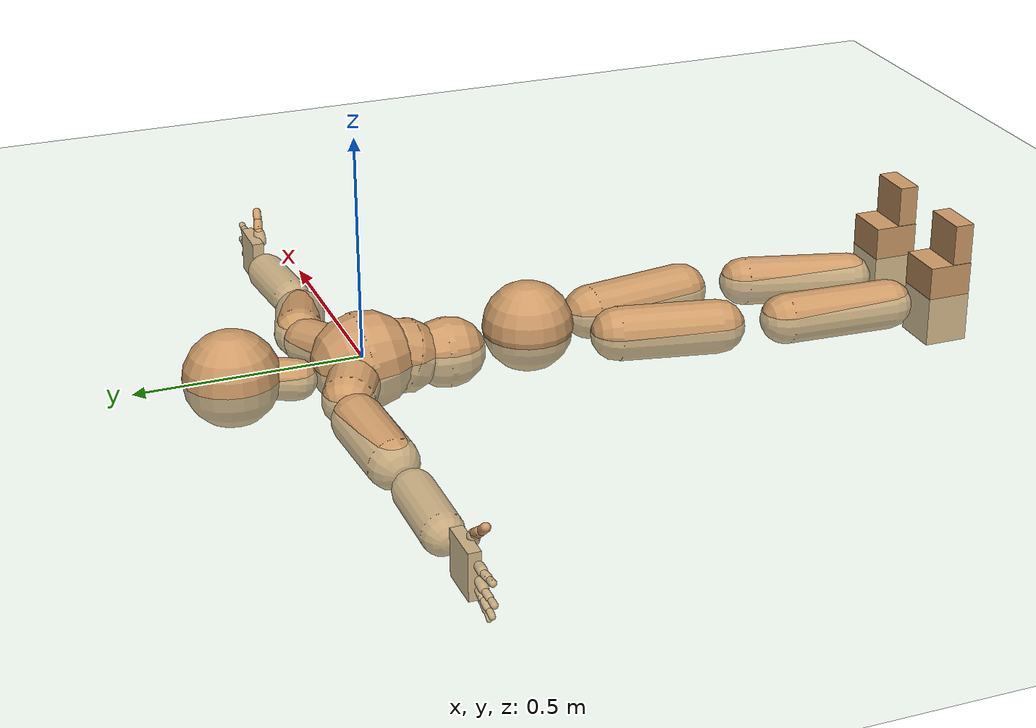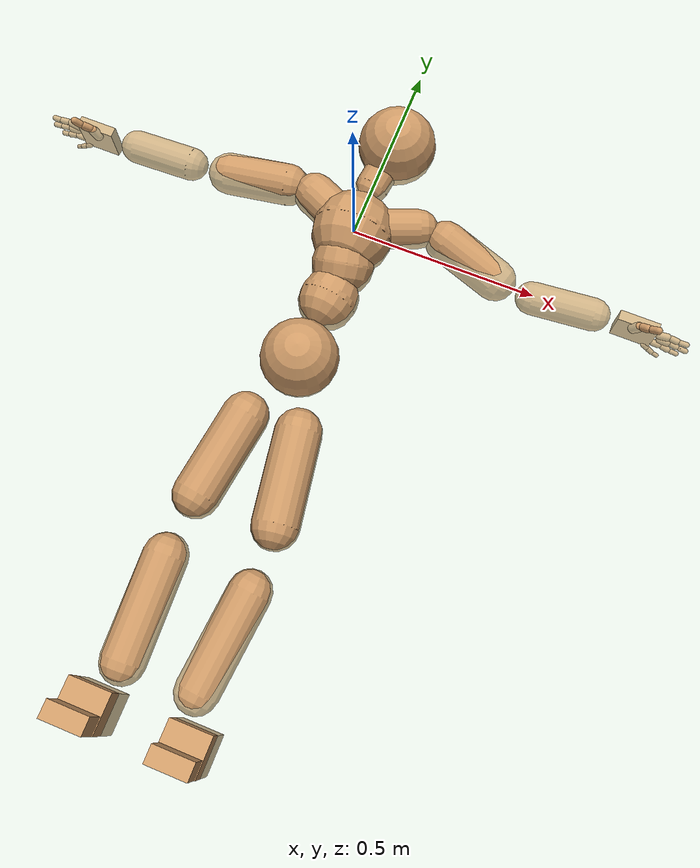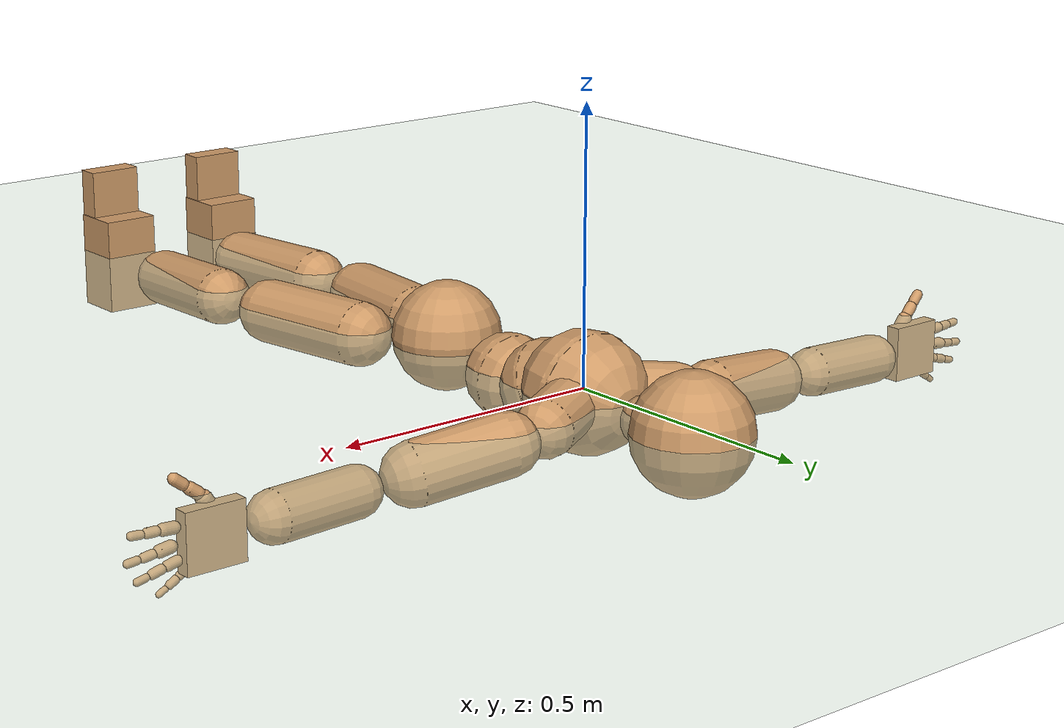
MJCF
<mujoco model="humanoid">
  <compiler coordinate="local"/>
  <default>
    <joint damping="0.0" armature="0.01" stiffness="0.0" limited="true"/>
    <geom conaffinity="1" condim="3" contype="7" margin="0.001" rgba="0.8 0.6 .4 1"/>
  </default>
  <asset>
    <texture type="skybox" builtin="gradient" rgb1=".4 .5 .6" rgb2="0 0 0" width="100" height="100"/>
    <texture builtin="flat" height="1278" mark="cross" markrgb="1 1 1" name="texgeom" random="0.01" rgb1="0.8 0.6 0.4" rgb2="0.8 0.6 0.4" type="cube" width="127"/>
    <texture builtin="checker" height="100" name="texplane" rgb1="0 0 0" rgb2="0.8 0.8 0.8" type="2d" width="100"/>
    <material name="MatPlane" reflectance="0.5" shininess="1" specular="1" texrepeat="60 60" texture="texplane"/>
    <material name="geom" texture="texgeom" texuniform="true"/>
  </asset>
  <worldbody>
    <light cutoff="100" diffuse="1 1 1" dir="-0 0 -1.3" directional="true" exponent="1" pos="0 0 1.3" specular=".1 .1 .1"/>
    <geom conaffinity="1" condim="3" name="floor" pos="0 0 0" rgba="0.8 0.9 0.8 1" size="100 100 .2" type="plane" material="MatPlane"/>
    <body name="Pelvis" pos="0.0026 -0.3819 0.0096">
      <freejoint name="Pelvis"/>
      <geom type="sphere" contype="1" conaffinity="1" density="4629.6296296296305" size="0.1019" pos="0.0000 0.0000 0.0000" name="Pelvis"/>
      <body name="L_Hip" pos="0.0558 -0.0964 -0.0258">
        <joint name="L_Hip_x" type="hinge" pos="0 0 0" axis="1 0 0" user="250 2.5 1 500 10 2" armature="0.01" range="-90.0000 90.0000" damping="0" stiffness="0"/>
        <joint name="L_Hip_y" type="hinge" pos="0 0 0" axis="0 1 0" user="250 2.5 1 500 10 2" armature="0.01" range="-90.0000 90.0000" damping="0" stiffness="0"/>
        <joint name="L_Hip_z" type="hinge" pos="0 0 0" axis="0 0 1" user="250 2.5 1 500 10 2" armature="0.01" range="-90.0000 90.0000" damping="0" stiffness="0"/>
        <geom type="capsule" contype="1" conaffinity="1" density="2040.816327" fromto="0.0132 -0.0804 -0.0003 0.0527 -0.3216 -0.0010" size="0.0616" name="L_Hip"/>
        <body name="L_Knee" pos="0.0659 -0.402 -0.0013">
          <joint name="L_Knee_x" type="hinge" pos="0 0 0" axis="1 0 0" user="250 2.5 1 500 10 2" armature="0.01" range="-180.0000 180.0000" damping="0" stiffness="0"/>
          <joint name="L_Knee_y" type="hinge" pos="0 0 0" axis="0 1 0" user="250 2.5 1 500 10 2" armature="0.01" range="-5.6250 5.6250" damping="0" stiffness="0"/>
          <joint name="L_Knee_z" type="hinge" pos="0 0 0" axis="0 0 1" user="250 2.5 1 500 10 2" armature="0.01" range="-5.6250 5.6250" damping="0" stiffness="0"/>
          <geom type="capsule" contype="1" conaffinity="1" density="1234.567901" fromto="-0.0087 -0.0866 -0.0061 -0.0348 -0.3463 -0.0244" size="0.0559" name="L_Knee"/>
          <body name="L_Ankle" pos="-0.0435 -0.4329 -0.0305">
            <joint name="L_Ankle_x" type="hinge" pos="0 0 0" axis="1 0 0" user="150 2.5 1 500 10 2" armature="0.01" range="-90.0000 90.0000" damping="0" stiffness="0"/>
            <joint name="L_Ankle_y" type="hinge" pos="0 0 0" axis="0 1 0" user="150 2.5 1 500 10 2" armature="0.01" range="-90.0000 90.0000" damping="0" stiffness="0"/>
            <joint name="L_Ankle_z" type="hinge" pos="0 0 0" axis="0 0 1" user="150 2.5 1 500 10 2" armature="0.01" range="-90.0000 90.0000" damping="0" stiffness="0"/>
            <geom type="box" density="457.232234" pos="0.0445 -0.0322 0.0263" size="0.0544 0.0508 0.0953" quat="1.0000 0.0000 0.0000 0.0000" name="L_Ankle"/>
            <body name="L_Toe" pos="0.0512 -0.0644 0.1317">
              <joint name="L_Toe_x" type="hinge" pos="0 0 0" axis="1 0 0" user="150 1 1 500 1 1" armature="0.01" range="-90.0000 90.0000" damping="0" stiffness="0"/>
              <joint name="L_Toe_y" type="hinge" pos="0 0 0" axis="0 1 0" user="150 1 1 500 1 1" armature="0.01" range="-45.0000 45.0000" damping="0" stiffness="0"/>
              <joint name="L_Toe_z" type="hinge" pos="0 0 0" axis="0 0 1" user="150 1 1 500 1 1" armature="0.01" range="-45.0000 45.0000" damping="0" stiffness="0"/>
              <geom type="box" density="424.249279" pos="-0.0067 0.0039 0.0290" size="0.0523 0.0225 0.0554" quat="1.0000 0.0000 0.0000 0.0000" name="L_Toe"/>
            </body>
          </body>
        </body>
      </body>
      <body name="R_Hip" pos="-0.0606 -0.1099 -0.0185">
        <joint name="R_Hip_x" type="hinge" pos="0 0 0" axis="1 0 0" user="250 2.5 1 500 10 2" armature="0.01" range="-90.0000 90.0000" damping="0" stiffness="0"/>
        <joint name="R_Hip_y" type="hinge" pos="0 0 0" axis="0 1 0" user="250 2.5 1 500 10 2" armature="0.01" range="-90.0000 90.0000" damping="0" stiffness="0"/>
        <joint name="R_Hip_z" type="hinge" pos="0 0 0" axis="0 0 1" user="250 2.5 1 500 10 2" armature="0.01" range="-90.0000 90.0000" damping="0" stiffness="0"/>
        <geom type="capsule" contype="1" conaffinity="1" density="2040.816327" fromto="-0.0109 -0.0765 -0.0022 -0.0436 -0.3060 -0.0087" size="0.061" name="R_Hip"/>
        <body name="R_Knee" pos="-0.0544 -0.3824 -0.0108">
          <joint name="R_Knee_x" type="hinge" pos="0 0 0" axis="1 0 0" user="250 2.5 1 500 10 2" armature="0.01" range="-180.0000 180.0000" damping="0" stiffness="0"/>
          <joint name="R_Knee_y" type="hinge" pos="0 0 0" axis="0 1 0" user="250 2.5 1 500 10 2" armature="0.01" range="-5.6250 5.6250" damping="0" stiffness="0"/>
          <joint name="R_Knee_z" type="hinge" pos="0 0 0" axis="0 0 1" user="250 2.5 1 500 10 2" armature="0.01" range="-5.6250 5.6250" damping="0" stiffness="0"/>
          <geom type="capsule" contype="1" conaffinity="1" density="1234.567901" fromto="0.0027 -0.0884 -0.0036 0.0108 -0.3535 -0.0145" size="0.0575" name="R_Knee"/>
          <body name="R_Ankle" pos="0.0136 -0.4419 -0.0182">
            <joint name="R_Ankle_x" type="hinge" pos="0 0 0" axis="1 0 0" user="150 1 1 500 10 2" armature="0.01" range="-90.0000 90.0000" damping="0" stiffness="0"/>
            <joint name="R_Ankle_y" type="hinge" pos="0 0 0" axis="0 1 0" user="150 1 1 500 10 2" armature="0.01" range="-90.0000 90.0000" damping="0" stiffness="0"/>
            <joint name="R_Ankle_z" type="hinge" pos="0 0 0" axis="0 0 1" user="150 1 1 500 10 2" armature="0.01" range="-90.0000 90.0000" damping="0" stiffness="0"/>
            <geom type="box" density="457.235852" pos="-0.0263 -0.0292 0.0162" size="0.0544 0.0508 0.0953" quat="1.0000 0.0000 0.0000 0.0000" name="R_Ankle"/>
            <body name="R_Toe" pos="-0.0417 -0.0642 0.1326">
              <joint name="R_Toe_x" type="hinge" pos="0 0 0" axis="1 0 0" user="150 1 1 500 1 1" armature="0.01" range="-90.0000 90.0000" damping="0" stiffness="0"/>
              <joint name="R_Toe_y" type="hinge" pos="0 0 0" axis="0 1 0" user="150 1 1 500 1 1" armature="0.01" range="-45.0000 45.0000" damping="0" stiffness="0"/>
              <joint name="R_Toe_z" type="hinge" pos="0 0 0" axis="0 0 1" user="150 1 1 500 1 1" armature="0.01" range="-45.0000 45.0000" damping="0" stiffness="0"/>
              <geom type="box" density="424.264413" pos="0.0153 0.0067 0.0179" size="0.0523 0.0225 0.0554" quat="1.0000 0.0000 0.0000 0.0000" name="R_Toe"/>
            </body>
          </body>
        </body>
      </body>
      <body name="Torso" pos="-0.003 0.1144 -0.03">
        <joint name="Torso_x" type="hinge" pos="0 0 0" axis="1 0 0" user="500 5 1 500 10 2" armature="0.01" range="-60.0000 60.0000" damping="0" stiffness="0"/>
        <joint name="Torso_y" type="hinge" pos="0 0 0" axis="0 1 0" user="500 5 1 500 10 2" armature="0.01" range="-60.0000 60.0000" damping="0" stiffness="0"/>
        <joint name="Torso_z" type="hinge" pos="0 0 0" axis="0 0 1" user="500 5 1 500 10 2" armature="0.01" range="-60.0000 60.0000" damping="0" stiffness="0"/>
        <geom type="capsule" contype="1" conaffinity="1" density="2040.816327" fromto="0.0049 0.0659 -0.0029 0.0060 0.0806 -0.0035" size="0.0776" name="Torso"/>
        <body name="Spine" pos="0.0109 0.1465 -0.0064">
          <joint name="Spine_x" type="hinge" pos="0 0 0" axis="1 0 0" user="500 5 1 500 10 2" armature="0.01" range="-60.0000 60.0000" damping="0" stiffness="0"/>
          <joint name="Spine_y" type="hinge" pos="0 0 0" axis="0 1 0" user="500 5 1 500 10 2" armature="0.01" range="-60.0000 60.0000" damping="0" stiffness="0"/>
          <joint name="Spine_z" type="hinge" pos="0 0 0" axis="0 0 1" user="500 5 1 500 10 2" armature="0.01" range="-60.0000 60.0000" damping="0" stiffness="0"/>
          <geom type="capsule" contype="1" conaffinity="1" density="2040.816327" fromto="-0.0052 0.0274 0.0119 -0.0064 0.0334 0.0145" size="0.0833" name="Spine"/>
          <body name="Chest" pos="-0.0116 0.0608 0.0264">
            <joint name="Chest_x" type="hinge" pos="0 0 0" axis="1 0 0" user="500 5 1 500 10 2" armature="0.01" range="-60.0000 60.0000" damping="0" stiffness="0"/>
            <joint name="Chest_y" type="hinge" pos="0 0 0" axis="0 1 0" user="500 5 1 500 10 2" armature="0.01" range="-60.0000 60.0000" damping="0" stiffness="0"/>
            <joint name="Chest_z" type="hinge" pos="0 0 0" axis="0 0 1" user="500 5 1 500 10 2" armature="0.01" range="-60.0000 60.0000" damping="0" stiffness="0"/>
            <geom type="capsule" contype="1" conaffinity="1" density="2040.816327" fromto="-0.0023 0.0540 -0.0060 -0.0028 0.0660 -0.0073" size="0.1093" name="Chest"/>
            <body name="Neck" pos="-0.0133 0.1776 -0.0257">
              <joint name="Neck_x" type="hinge" pos="0 0 0" axis="1 0 0" user="150 1 1 250 50 4" armature="0.01" range="-180.0000 180.0000" damping="0" stiffness="0"/>
              <joint name="Neck_y" type="hinge" pos="0 0 0" axis="0 1 0" user="150 1 1 250 50 4" armature="0.01" range="-180.0000 180.0000" damping="0" stiffness="0"/>
              <joint name="Neck_z" type="hinge" pos="0 0 0" axis="0 0 1" user="150 1 1 250 50 4" armature="0.01" range="-180.0000 180.0000" damping="0" stiffness="0"/>
              <geom type="capsule" contype="1" conaffinity="1" density="1000" fromto="0.0054 0.0336 0.0044 0.0217 0.1343 0.0174" size="0.0457" name="Neck"/>
              <body name="Head" pos="0.0271 0.1679 0.0218">
                <joint name="Head_x" type="hinge" pos="0 0 0" axis="1 0 0" user="150 1 1 250 50 4" armature="0.01" range="-90.0000 90.0000" damping="0" stiffness="0"/>
                <joint name="Head_y" type="hinge" pos="0 0 0" axis="0 1 0" user="150 1 1 250 50 4" armature="0.01" range="-90.0000 90.0000" damping="0" stiffness="0"/>
                <joint name="Head_z" type="hinge" pos="0 0 0" axis="0 0 1" user="150 1 1 250 50 4" armature="0.01" range="-90.0000 90.0000" damping="0" stiffness="0"/>
                <geom type="sphere" contype="1" conaffinity="1" density="1000" size="0.1063" pos="0.0000 0.0000 0.0000" name="Head"/>
              </body>
            </body>
            <body name="L_Thorax" pos="0.0486 0.0916 -0.0037">
              <joint name="L_Thorax_x" type="hinge" pos="0 0 0" axis="1 0 0" user="200 2 1 500 50 4" armature="0.01" range="-180.0000 180.0000" damping="0" stiffness="0"/>
              <joint name="L_Thorax_y" type="hinge" pos="0 0 0" axis="0 1 0" user="200 2 1 500 50 4" armature="0.01" range="-180.0000 180.0000" damping="0" stiffness="0"/>
              <joint name="L_Thorax_z" type="hinge" pos="0 0 0" axis="0 0 1" user="200 2 1 500 50 4" armature="0.01" range="-180.0000 180.0000" damping="0" stiffness="0"/>
              <geom type="capsule" contype="1" conaffinity="1" density="1000" fromto="0.0264 0.0121 -0.0035 0.1057 0.0485 -0.0139" size="0.0529" name="L_Thorax"/>
              <body name="L_Shoulder" pos="0.1322 0.0606 -0.0174">
                <joint name="L_Shoulder_x" type="hinge" pos="0 0 0" axis="1 0 0" user="200 2 1 500 50 4" armature="0.01" range="-180.0000 180.0000" damping="0" stiffness="0"/>
                <joint name="L_Shoulder_y" type="hinge" pos="0 0 0" axis="0 1 0" user="200 2 1 500 50 4" armature="0.01" range="-180.0000 180.0000" damping="0" stiffness="0"/>
                <joint name="L_Shoulder_z" type="hinge" pos="0 0 0" axis="0 0 1" user="200 2 1 500 50 4" armature="0.01" range="-180.0000 180.0000" damping="0" stiffness="0"/>
                <geom type="capsule" contype="1" conaffinity="1" density="1000" fromto="0.0530 -0.0146 -0.0091 0.2121 -0.0585 -0.0364" size="0.0565" name="L_Shoulder"/>
                <body name="L_Elbow" pos="0.2651 -0.0731 -0.0454">
                  <joint name="L_Elbow_x" type="hinge" pos="0 0 0" axis="1 0 0" user="150 1 1 150 10 2" armature="0.01" range="-720.0000 720.0000" damping="0" stiffness="0"/>
                  <joint name="L_Elbow_y" type="hinge" pos="0 0 0" axis="0 1 0" user="150 1 1 150 10 2" armature="0.01" range="-720.0000 720.0000" damping="0" stiffness="0"/>
                  <joint name="L_Elbow_z" type="hinge" pos="0 0 0" axis="0 0 1" user="150 1 1 150 10 2" armature="0.01" range="-720.0000 720.0000" damping="0" stiffness="0"/>
                  <geom type="capsule" contype="1" conaffinity="1" density="1000" fromto="0.0556 0.0051 0.0005 0.2223 0.0203 0.0019" size="0.0449" name="L_Elbow"/>
                  <body name="L_Wrist" pos="0.2779 0.0254 0.0024">
                    <joint name="L_Wrist_x" type="hinge" pos="0 0 0" axis="1 0 0" user="100 1 1 150 1 1" armature="0.01" range="-180.0000 180.0000" damping="0" stiffness="0"/>
                    <joint name="L_Wrist_y" type="hinge" pos="0 0 0" axis="0 1 0" user="100 1 1 150 1 1" armature="0.01" range="-180.0000 180.0000" damping="0" stiffness="0"/>
                    <joint name="L_Wrist_z" type="hinge" pos="0 0 0" axis="0 0 1" user="100 1 1 150 1 1" armature="0.01" range="-180.0000 180.0000" damping="0" stiffness="0"/>
                    <geom type="box" density="1224.58705" pos="0.0591 -0.0017 -0.0024" size="0.0542 0.0137 0.0519" quat="1.0000 0.0000 0.0000 0.0000" name="L_Wrist"/>
                    <body name="L_Index1" pos="0.1145 -0.0084 0.0225">
                      <joint name="L_Index1_x" type="hinge" pos="0 0 0" axis="1 0 0" user="100 10 1 150" armature="0.01" range="-180.0000 180.0000" damping="0" stiffness="0"/>
                      <joint name="L_Index1_y" type="hinge" pos="0 0 0" axis="0 1 0" user="100 10 1 150" armature="0.01" range="-180.0000 180.0000" damping="0" stiffness="0"/>
                      <joint name="L_Index1_z" type="hinge" pos="0 0 0" axis="0 0 1" user="100 10 1 150" armature="0.01" range="-180.0000 180.0000" damping="0" stiffness="0"/>
                      <geom type="capsule" contype="1" conaffinity="1" density="1000" fromto="0.0069 0.0005 0.0006 0.0278 0.0021 0.0024" size="0.0103" name="L_Index1"/>
                      <body name="L_Index2" pos="0.0347 0.0026 0.003">
                        <joint name="L_Index2_x" type="hinge" pos="0 0 0" axis="1 0 0" user="100 10 1 150" armature="0.01" range="-180.0000 180.0000" damping="0" stiffness="0"/>
                        <joint name="L_Index2_y" type="hinge" pos="0 0 0" axis="0 1 0" user="100 10 1 150" armature="0.01" range="-180.0000 180.0000" damping="0" stiffness="0"/>
                        <joint name="L_Index2_z" type="hinge" pos="0 0 0" axis="0 0 1" user="100 10 1 150" armature="0.01" range="-180.0000 180.0000" damping="0" stiffness="0"/>
                        <geom type="capsule" contype="1" conaffinity="1" density="1000" fromto="0.0049 -0.0005 -0.0001 0.0196 -0.0021 -0.0003" size="0.0085" name="L_Index2"/>
                        <body name="L_Index3" pos="0.0245 -0.0026 -0.0004">
                          <joint name="L_Index3_x" type="hinge" pos="0 0 0" axis="1 0 0" user="100 10 1 150" armature="0.01" range="-180.0000 180.0000" damping="0" stiffness="0"/>
                          <joint name="L_Index3_y" type="hinge" pos="0 0 0" axis="0 1 0" user="100 10 1 150" armature="0.01" range="-180.0000 180.0000" damping="0" stiffness="0"/>
                          <joint name="L_Index3_z" type="hinge" pos="0 0 0" axis="0 0 1" user="100 10 1 150" armature="0.01" range="-180.0000 180.0000" damping="0" stiffness="0"/>
                          <geom type="capsule" contype="1" conaffinity="1" density="1000" fromto="0.0053 -0.0001 0.0003 0.0212 -0.0005 0.0013" size="0.0072" name="L_Index3"/>
                        </body>
                      </body>
                    </body>
                    <body name="L_Middle1" pos="0.1231 -0.0059 -0.004">
                      <joint name="L_Middle1_x" type="hinge" pos="0 0 0" axis="1 0 0" user="100 10 1 150" armature="0.01" range="-180.0000 180.0000" damping="0" stiffness="0"/>
                      <joint name="L_Middle1_y" type="hinge" pos="0 0 0" axis="0 1 0" user="100 10 1 150" armature="0.01" range="-180.0000 180.0000" damping="0" stiffness="0"/>
                      <joint name="L_Middle1_z" type="hinge" pos="0 0 0" axis="0 0 1" user="100 10 1 150" armature="0.01" range="-180.0000 180.0000" damping="0" stiffness="0"/>
                      <geom type="capsule" contype="1" conaffinity="1" density="1000" fromto="0.0067 0.0002 -0.0009 0.0267 0.0006 -0.0035" size="0.0106" name="L_Middle1"/>
                      <body name="L_Middle2" pos="0.0334 0.0008 -0.0043">
                        <joint name="L_Middle2_x" type="hinge" pos="0 0 0" axis="1 0 0" user="100 10 1 150" armature="0.01" range="-180.0000 180.0000" damping="0" stiffness="0"/>
                        <joint name="L_Middle2_y" type="hinge" pos="0 0 0" axis="0 1 0" user="100 10 1 150" armature="0.01" range="-180.0000 180.0000" damping="0" stiffness="0"/>
                        <joint name="L_Middle2_z" type="hinge" pos="0 0 0" axis="0 0 1" user="100 10 1 150" armature="0.01" range="-180.0000 180.0000" damping="0" stiffness="0"/>
                        <geom type="capsule" contype="1" conaffinity="1" density="1000" fromto="0.0051 -0.0005 -0.0009 0.0204 -0.0019 -0.0037" size="0.0079" name="L_Middle2"/>
                        <body name="L_Middle3" pos="0.0255 -0.0024 -0.0046">
                          <joint name="L_Middle3_x" type="hinge" pos="0 0 0" axis="1 0 0" user="100 10 1 150" armature="0.01" range="-180.0000 180.0000" damping="0" stiffness="0"/>
                          <joint name="L_Middle3_y" type="hinge" pos="0 0 0" axis="0 1 0" user="100 10 1 150" armature="0.01" range="-180.0000 180.0000" damping="0" stiffness="0"/>
                          <joint name="L_Middle3_z" type="hinge" pos="0 0 0" axis="0 0 1" user="100 10 1 150" armature="0.01" range="-180.0000 180.0000" damping="0" stiffness="0"/>
                          <geom type="capsule" contype="1" conaffinity="1" density="1000" fromto="0.0055 -0.0001 -0.0005 0.0220 -0.0003 -0.0021" size="0.0069" name="L_Middle3"/>
                        </body>
                      </body>
                    </body>
                    <body name="L_Pinky1" pos="0.0953 -0.0148 -0.0488">
                      <joint name="L_Pinky1_x" type="hinge" pos="0 0 0" axis="1 0 0" user="100 10 1 150" armature="0.01" range="-180.0000 180.0000" damping="0" stiffness="0"/>
                      <joint name="L_Pinky1_y" type="hinge" pos="0 0 0" axis="0 1 0" user="100 10 1 150" armature="0.01" range="-180.0000 180.0000" damping="0" stiffness="0"/>
                      <joint name="L_Pinky1_z" type="hinge" pos="0 0 0" axis="0 0 1" user="100 10 1 150" armature="0.01" range="-180.0000 180.0000" damping="0" stiffness="0"/>
                      <geom type="capsule" contype="1" conaffinity="1" density="1000" fromto="0.0036 -0.0003 -0.0026 0.0143 -0.0012 -0.0106" size="0.0074" name="L_Pinky1"/>
                      <body name="L_Pinky2" pos="0.0179 -0.0015 -0.0132">
                        <joint name="L_Pinky2_x" type="hinge" pos="0 0 0" axis="1 0 0" user="100 10 1 150" armature="0.01" range="-180.0000 180.0000" damping="0" stiffness="0"/>
                        <joint name="L_Pinky2_y" type="hinge" pos="0 0 0" axis="0 1 0" user="100 10 1 150" armature="0.01" range="-180.0000 180.0000" damping="0" stiffness="0"/>
                        <joint name="L_Pinky2_z" type="hinge" pos="0 0 0" axis="0 0 1" user="100 10 1 150" armature="0.01" range="-180.0000 180.0000" damping="0" stiffness="0"/>
                        <geom type="capsule" contype="1" conaffinity="1" density="1000" fromto="0.0035 -0.0004 -0.0024 0.0139 -0.0017 -0.0096" size="0.0071" name="L_Pinky2"/>
                        <body name="L_Pinky3" pos="0.0173 -0.0021 -0.0121">
                          <joint name="L_Pinky3_x" type="hinge" pos="0 0 0" axis="1 0 0" user="100 10 1 150" armature="0.01" range="-180.0000 180.0000" damping="0" stiffness="0"/>
                          <joint name="L_Pinky3_y" type="hinge" pos="0 0 0" axis="0 1 0" user="100 10 1 150" armature="0.01" range="-180.0000 180.0000" damping="0" stiffness="0"/>
                          <joint name="L_Pinky3_z" type="hinge" pos="0 0 0" axis="0 0 1" user="100 10 1 150" armature="0.01" range="-180.0000 180.0000" damping="0" stiffness="0"/>
                          <geom type="capsule" contype="1" conaffinity="1" density="1000" fromto="0.0039 -0.0000 -0.0020 0.0155 -0.0001 -0.0080" size="0.0054" name="L_Pinky3"/>
                        </body>
                      </body>
                    </body>
                    <body name="L_Ring1" pos="0.1102 -0.009 -0.0304">
                      <joint name="L_Ring1_x" type="hinge" pos="0 0 0" axis="1 0 0" user="100 10 1 150" armature="0.01" range="-180.0000 180.0000" damping="0" stiffness="0"/>
                      <joint name="L_Ring1_y" type="hinge" pos="0 0 0" axis="0 1 0" user="100 10 1 150" armature="0.01" range="-180.0000 180.0000" damping="0" stiffness="0"/>
                      <joint name="L_Ring1_z" type="hinge" pos="0 0 0" axis="0 0 1" user="100 10 1 150" armature="0.01" range="-180.0000 180.0000" damping="0" stiffness="0"/>
                      <geom type="capsule" contype="1" conaffinity="1" density="1000" fromto="0.0063 0.0003 -0.0012 0.0250 0.0013 -0.0047" size="0.0089" name="L_Ring1"/>
                      <body name="L_Ring2" pos="0.0313 0.0016 -0.0058">
                        <joint name="L_Ring2_x" type="hinge" pos="0 0 0" axis="1 0 0" user="100 10 1 150" armature="0.01" range="-180.0000 180.0000" damping="0" stiffness="0"/>
                        <joint name="L_Ring2_y" type="hinge" pos="0 0 0" axis="0 1 0" user="100 10 1 150" armature="0.01" range="-180.0000 180.0000" damping="0" stiffness="0"/>
                        <joint name="L_Ring2_z" type="hinge" pos="0 0 0" axis="0 0 1" user="100 10 1 150" armature="0.01" range="-180.0000 180.0000" damping="0" stiffness="0"/>
                        <geom type="capsule" contype="1" conaffinity="1" density="1000" fromto="0.0050 -0.0004 -0.0016 0.0201 -0.0014 -0.0062" size="0.0083" name="L_Ring2"/>
                        <body name="L_Ring3" pos="0.0251 -0.0018 -0.0078">
                          <joint name="L_Ring3_x" type="hinge" pos="0 0 0" axis="1 0 0" user="100 10 1 150" armature="0.01" range="-180.0000 180.0000" damping="0" stiffness="0"/>
                          <joint name="L_Ring3_y" type="hinge" pos="0 0 0" axis="0 1 0" user="100 10 1 150" armature="0.01" range="-180.0000 180.0000" damping="0" stiffness="0"/>
                          <joint name="L_Ring3_z" type="hinge" pos="0 0 0" axis="0 0 1" user="100 10 1 150" armature="0.01" range="-180.0000 180.0000" damping="0" stiffness="0"/>
                          <geom type="capsule" contype="1" conaffinity="1" density="1000" fromto="0.0054 0.0000 -0.0012 0.0217 0.0002 -0.0046" size="0.0064" name="L_Ring3"/>
                        </body>
                      </body>
                    </body>
                    <body name="L_Thumb1" pos="0.046 -0.0201 0.0304">
                      <joint name="L_Thumb1_x" type="hinge" pos="0 0 0" axis="1 0 0" user="100 10 1 150" armature="0.01" range="-180.0000 180.0000" damping="0" stiffness="0"/>
                      <joint name="L_Thumb1_y" type="hinge" pos="0 0 0" axis="0 1 0" user="100 10 1 150" armature="0.01" range="-180.0000 180.0000" damping="0" stiffness="0"/>
                      <joint name="L_Thumb1_z" type="hinge" pos="0 0 0" axis="0 0 1" user="100 10 1 150" armature="0.01" range="-180.0000 180.0000" damping="0" stiffness="0"/>
                      <geom type="capsule" contype="1" conaffinity="1" density="1000" fromto="0.0038 0.0003 0.0057 0.0151 0.0010 0.0228" size="0.0136" name="L_Thumb1"/>
                      <body name="L_Thumb2" pos="0.0188 0.0013 0.0285">
                        <joint name="L_Thumb2_x" type="hinge" pos="0 0 0" axis="1 0 0" user="100 10 1 150" armature="0.01" range="-180.0000 180.0000" damping="0" stiffness="0"/>
                        <joint name="L_Thumb2_y" type="hinge" pos="0 0 0" axis="0 1 0" user="100 10 1 150" armature="0.01" range="-180.0000 180.0000" damping="0" stiffness="0"/>
                        <joint name="L_Thumb2_z" type="hinge" pos="0 0 0" axis="0 0 1" user="100 10 1 150" armature="0.01" range="-180.0000 180.0000" damping="0" stiffness="0"/>
                        <geom type="capsule" contype="1" conaffinity="1" density="1000" fromto="0.0045 -0.0011 0.0035 0.0181 -0.0046 0.0139" size="0.0108" name="L_Thumb2"/>
                        <body name="L_Thumb3" pos="0.0226 -0.0057 0.0173">
                          <joint name="L_Thumb3_x" type="hinge" pos="0 0 0" axis="1 0 0" user="100 10 1 150" armature="0.01" range="-180.0000 180.0000" damping="0" stiffness="0"/>
                          <joint name="L_Thumb3_y" type="hinge" pos="0 0 0" axis="0 1 0" user="100 10 1 150" armature="0.01" range="-180.0000 180.0000" damping="0" stiffness="0"/>
                          <joint name="L_Thumb3_z" type="hinge" pos="0 0 0" axis="0 0 1" user="100 10 1 150" armature="0.01" range="-180.0000 180.0000" damping="0" stiffness="0"/>
                          <geom type="capsule" contype="1" conaffinity="1" density="1000" fromto="0.0049 -0.0007 0.0039 0.0197 -0.0030 0.0155" size="0.0098" name="L_Thumb3"/>
                        </body>
                      </body>
                    </body>
                  </body>
                </body>
              </body>
            </body>
            <body name="R_Thorax" pos="-0.0506 0.0905 -0.0105">
              <joint name="R_Thorax_x" type="hinge" pos="0 0 0" axis="1 0 0" user="200 2 1 150 10 2" armature="0.01" range="-180.0000 180.0000" damping="0" stiffness="0"/>
              <joint name="R_Thorax_y" type="hinge" pos="0 0 0" axis="0 1 0" user="200 2 1 150 10 2" armature="0.01" range="-180.0000 180.0000" damping="0" stiffness="0"/>
              <joint name="R_Thorax_z" type="hinge" pos="0 0 0" axis="0 0 1" user="200 2 1 150 10 2" armature="0.01" range="-180.0000 180.0000" damping="0" stiffness="0"/>
              <geom type="capsule" contype="1" conaffinity="1" density="1000" fromto="-0.0230 0.0112 -0.0027 -0.0919 0.0449 -0.0109" size="0.058" name="R_Thorax"/>
              <body name="R_Shoulder" pos="-0.1149 0.0561 -0.0136">
                <joint name="R_Shoulder_x" type="hinge" pos="0 0 0" axis="1 0 0" user="200 2 1 250 10 2" armature="0.01" range="-180.0000 180.0000" damping="0" stiffness="0"/>
                <joint name="R_Shoulder_y" type="hinge" pos="0 0 0" axis="0 1 0" user="200 2 1 250 10 2" armature="0.01" range="-180.0000 180.0000" damping="0" stiffness="0"/>
                <joint name="R_Shoulder_z" type="hinge" pos="0 0 0" axis="0 0 1" user="200 2 1 250 10 2" armature="0.01" range="-180.0000 180.0000" damping="0" stiffness="0"/>
                <geom type="capsule" contype="1" conaffinity="1" density="1000" fromto="-0.0568 -0.0068 -0.0058 -0.2270 -0.0271 -0.0234" size="0.0564" name="R_Shoulder"/>
                <body name="R_Elbow" pos="-0.2838 -0.0338 -0.0292">
                  <joint name="R_Elbow_x" type="hinge" pos="0 0 0" axis="1 0 0" user="150 1 1 150 10 2" armature="0.01" range="-720.0000 720.0000" damping="0" stiffness="0"/>
                  <joint name="R_Elbow_y" type="hinge" pos="0 0 0" axis="0 1 0" user="150 1 1 150 10 2" armature="0.01" range="-720.0000 720.0000" damping="0" stiffness="0"/>
                  <joint name="R_Elbow_z" type="hinge" pos="0 0 0" axis="0 0 1" user="150 1 1 150 10 2" armature="0.01" range="-720.0000 720.0000" damping="0" stiffness="0"/>
                  <geom type="capsule" contype="1" conaffinity="1" density="1000" fromto="-0.0548 -0.0010 -0.0023 -0.2193 -0.0039 -0.0090" size="0.0453" name="R_Elbow"/>
                  <body name="R_Wrist" pos="-0.2741 -0.0049 -0.0113">
                    <joint name="R_Wrist_x" type="hinge" pos="0 0 0" axis="1 0 0" user="100 1 1 150 1 1" armature="0.01" range="-180.0000 180.0000" damping="0" stiffness="0"/>
                    <joint name="R_Wrist_y" type="hinge" pos="0 0 0" axis="0 1 0" user="100 1 1 150 1 1" armature="0.01" range="-180.0000 180.0000" damping="0" stiffness="0"/>
                    <joint name="R_Wrist_z" type="hinge" pos="0 0 0" axis="0 0 1" user="100 1 1 150 1 1" armature="0.01" range="-180.0000 180.0000" damping="0" stiffness="0"/>
                    <geom type="box" density="1242.727883" pos="-0.0602 -0.0051 -0.0020" size="0.0515 0.0137 0.0519" quat="1.0000 0.0000 0.0000 0.0000" name="R_Wrist"/>
                    <body name="R_Index1" pos="-0.1124 -0.0118 0.0229">
                      <joint name="R_Index1_x" type="hinge" pos="0 0 0" axis="1 0 0" user="100 10 1 150" armature="0.01" range="-180.0000 180.0000" damping="0" stiffness="0"/>
                      <joint name="R_Index1_y" type="hinge" pos="0 0 0" axis="0 1 0" user="100 10 1 150" armature="0.01" range="-180.0000 180.0000" damping="0" stiffness="0"/>
                      <joint name="R_Index1_z" type="hinge" pos="0 0 0" axis="0 0 1" user="100 10 1 150" armature="0.01" range="-180.0000 180.0000" damping="0" stiffness="0"/>
                      <geom type="capsule" contype="1" conaffinity="1" density="1000" fromto="-0.0069 0.0005 0.0006 -0.0278 0.0021 0.0024" size="0.0103" name="R_Index1"/>
                      <body name="R_Index2" pos="-0.0347 0.0026 0.003">
                        <joint name="R_Index2_x" type="hinge" pos="0 0 0" axis="1 0 0" user="100 10 1 150" armature="0.01" range="-180.0000 180.0000" damping="0" stiffness="0"/>
                        <joint name="R_Index2_y" type="hinge" pos="0 0 0" axis="0 1 0" user="100 10 1 150" armature="0.01" range="-180.0000 180.0000" damping="0" stiffness="0"/>
                        <joint name="R_Index2_z" type="hinge" pos="0 0 0" axis="0 0 1" user="100 10 1 150" armature="0.01" range="-180.0000 180.0000" damping="0" stiffness="0"/>
                        <geom type="capsule" contype="1" conaffinity="1" density="1000" fromto="-0.0049 -0.0005 -0.0001 -0.0196 -0.0021 -0.0003" size="0.0085" name="R_Index2"/>
                        <body name="R_Index3" pos="-0.0245 -0.0026 -0.0004">
                          <joint name="R_Index3_x" type="hinge" pos="0 0 0" axis="1 0 0" user="100 10 1 150" armature="0.01" range="-180.0000 180.0000" damping="0" stiffness="0"/>
                          <joint name="R_Index3_y" type="hinge" pos="0 0 0" axis="0 1 0" user="100 10 1 150" armature="0.01" range="-180.0000 180.0000" damping="0" stiffness="0"/>
                          <joint name="R_Index3_z" type="hinge" pos="0 0 0" axis="0 0 1" user="100 10 1 150" armature="0.01" range="-180.0000 180.0000" damping="0" stiffness="0"/>
                          <geom type="capsule" contype="1" conaffinity="1" density="1000" fromto="-0.0045 -0.0001 0.0003 -0.0180 -0.0005 0.0013" size="0.0075" name="R_Index3"/>
                        </body>
                      </body>
                    </body>
                    <body name="R_Middle1" pos="-0.1211 -0.0093 -0.0035">
                      <joint name="R_Middle1_x" type="hinge" pos="0 0 0" axis="1 0 0" user="100 10 1 150" armature="0.01" range="-180.0000 180.0000" damping="0" stiffness="0"/>
                      <joint name="R_Middle1_y" type="hinge" pos="0 0 0" axis="0 1 0" user="100 10 1 150" armature="0.01" range="-180.0000 180.0000" damping="0" stiffness="0"/>
                      <joint name="R_Middle1_z" type="hinge" pos="0 0 0" axis="0 0 1" user="100 10 1 150" armature="0.01" range="-180.0000 180.0000" damping="0" stiffness="0"/>
                      <geom type="capsule" contype="1" conaffinity="1" density="1000" fromto="-0.0067 0.0002 -0.0009 -0.0267 0.0006 -0.0035" size="0.0106" name="R_Middle1"/>
                      <body name="R_Middle2" pos="-0.0334 0.0008 -0.0043">
                        <joint name="R_Middle2_x" type="hinge" pos="0 0 0" axis="1 0 0" user="100 10 1 150" armature="0.01" range="-180.0000 180.0000" damping="0" stiffness="0"/>
                        <joint name="R_Middle2_y" type="hinge" pos="0 0 0" axis="0 1 0" user="100 10 1 150" armature="0.01" range="-180.0000 180.0000" damping="0" stiffness="0"/>
                        <joint name="R_Middle2_z" type="hinge" pos="0 0 0" axis="0 0 1" user="100 10 1 150" armature="0.01" range="-180.0000 180.0000" damping="0" stiffness="0"/>
                        <geom type="capsule" contype="1" conaffinity="1" density="1000" fromto="-0.0051 -0.0005 -0.0009 -0.0204 -0.0019 -0.0037" size="0.0079" name="R_Middle2"/>
                        <body name="R_Middle3" pos="-0.0255 -0.0024 -0.0046">
                          <joint name="R_Middle3_x" type="hinge" pos="0 0 0" axis="1 0 0" user="100 10 1 150" armature="0.01" range="-180.0000 180.0000" damping="0" stiffness="0"/>
                          <joint name="R_Middle3_y" type="hinge" pos="0 0 0" axis="0 1 0" user="100 10 1 150" armature="0.01" range="-180.0000 180.0000" damping="0" stiffness="0"/>
                          <joint name="R_Middle3_z" type="hinge" pos="0 0 0" axis="0 0 1" user="100 10 1 150" armature="0.01" range="-180.0000 180.0000" damping="0" stiffness="0"/>
                          <geom type="capsule" contype="1" conaffinity="1" density="1000" fromto="-0.0047 -0.0001 -0.0005 -0.0188 -0.0003 -0.0021" size="0.0072" name="R_Middle3"/>
                        </body>
                      </body>
                    </body>
                    <body name="R_Pinky1" pos="-0.0932 -0.0182 -0.0484">
                      <joint name="R_Pinky1_x" type="hinge" pos="0 0 0" axis="1 0 0" user="100 10 1 150" armature="0.01" range="-180.0000 180.0000" damping="0" stiffness="0"/>
                      <joint name="R_Pinky1_y" type="hinge" pos="0 0 0" axis="0 1 0" user="100 10 1 150" armature="0.01" range="-180.0000 180.0000" damping="0" stiffness="0"/>
                      <joint name="R_Pinky1_z" type="hinge" pos="0 0 0" axis="0 0 1" user="100 10 1 150" armature="0.01" range="-180.0000 180.0000" damping="0" stiffness="0"/>
                      <geom type="capsule" contype="1" conaffinity="1" density="1000" fromto="-0.0036 -0.0003 -0.0026 -0.0143 -0.0012 -0.0106" size="0.0074" name="R_Pinky1"/>
                      <body name="R_Pinky2" pos="-0.0179 -0.0015 -0.0132">
                        <joint name="R_Pinky2_x" type="hinge" pos="0 0 0" axis="1 0 0" user="100 10 1 150" armature="0.01" range="-180.0000 180.0000" damping="0" stiffness="0"/>
                        <joint name="R_Pinky2_y" type="hinge" pos="0 0 0" axis="0 1 0" user="100 10 1 150" armature="0.01" range="-180.0000 180.0000" damping="0" stiffness="0"/>
                        <joint name="R_Pinky2_z" type="hinge" pos="0 0 0" axis="0 0 1" user="100 10 1 150" armature="0.01" range="-180.0000 180.0000" damping="0" stiffness="0"/>
                        <geom type="capsule" contype="1" conaffinity="1" density="1000" fromto="-0.0035 -0.0004 -0.0024 -0.0139 -0.0017 -0.0096" size="0.0071" name="R_Pinky2"/>
                        <body name="R_Pinky3" pos="-0.0173 -0.0021 -0.0121">
                          <joint name="R_Pinky3_x" type="hinge" pos="0 0 0" axis="1 0 0" user="100 10 1 150" armature="0.01" range="-180.0000 180.0000" damping="0" stiffness="0"/>
                          <joint name="R_Pinky3_y" type="hinge" pos="0 0 0" axis="0 1 0" user="100 10 1 150" armature="0.01" range="-180.0000 180.0000" damping="0" stiffness="0"/>
                          <joint name="R_Pinky3_z" type="hinge" pos="0 0 0" axis="0 0 1" user="100 10 1 150" armature="0.01" range="-180.0000 180.0000" damping="0" stiffness="0"/>
                          <geom type="capsule" contype="1" conaffinity="1" density="1000" fromto="-0.0031 -0.0000 -0.0020 -0.0123 -0.0001 -0.0080" size="0.0057" name="R_Pinky3"/>
                        </body>
                      </body>
                    </body>
                    <body name="R_Ring1" pos="-0.1082 -0.0124 -0.0299">
                      <joint name="R_Ring1_x" type="hinge" pos="0 0 0" axis="1 0 0" user="100 10 1 150" armature="0.01" range="-180.0000 180.0000" damping="0" stiffness="0"/>
                      <joint name="R_Ring1_y" type="hinge" pos="0 0 0" axis="0 1 0" user="100 10 1 150" armature="0.01" range="-180.0000 180.0000" damping="0" stiffness="0"/>
                      <joint name="R_Ring1_z" type="hinge" pos="0 0 0" axis="0 0 1" user="100 10 1 150" armature="0.01" range="-180.0000 180.0000" damping="0" stiffness="0"/>
                      <geom type="capsule" contype="1" conaffinity="1" density="1000" fromto="-0.0063 0.0003 -0.0012 -0.0250 0.0013 -0.0047" size="0.0089" name="R_Ring1"/>
                      <body name="R_Ring2" pos="-0.0313 0.0016 -0.0058">
                        <joint name="R_Ring2_x" type="hinge" pos="0 0 0" axis="1 0 0" user="100 10 1 150" armature="0.01" range="-180.0000 180.0000" damping="0" stiffness="0"/>
                        <joint name="R_Ring2_y" type="hinge" pos="0 0 0" axis="0 1 0" user="100 10 1 150" armature="0.01" range="-180.0000 180.0000" damping="0" stiffness="0"/>
                        <joint name="R_Ring2_z" type="hinge" pos="0 0 0" axis="0 0 1" user="100 10 1 150" armature="0.01" range="-180.0000 180.0000" damping="0" stiffness="0"/>
                        <geom type="capsule" contype="1" conaffinity="1" density="1000" fromto="-0.0050 -0.0004 -0.0016 -0.0201 -0.0014 -0.0062" size="0.0083" name="R_Ring2"/>
                        <body name="R_Ring3" pos="-0.0251 -0.0018 -0.0078">
                          <joint name="R_Ring3_x" type="hinge" pos="0 0 0" axis="1 0 0" user="100 10 1 150" armature="0.01" range="-180.0000 180.0000" damping="0" stiffness="0"/>
                          <joint name="R_Ring3_y" type="hinge" pos="0 0 0" axis="0 1 0" user="100 10 1 150" armature="0.01" range="-180.0000 180.0000" damping="0" stiffness="0"/>
                          <joint name="R_Ring3_z" type="hinge" pos="0 0 0" axis="0 0 1" user="100 10 1 150" armature="0.01" range="-180.0000 180.0000" damping="0" stiffness="0"/>
                          <geom type="capsule" contype="1" conaffinity="1" density="1000" fromto="-0.0046 0.0000 -0.0012 -0.0185 0.0002 -0.0046" size="0.0067" name="R_Ring3"/>
                        </body>
                      </body>
                    </body>
                    <body name="R_Thumb1" pos="-0.044 -0.0235 0.0309">
                      <joint name="R_Thumb1_x" type="hinge" pos="0 0 0" axis="1 0 0" user="100 10 1 150" armature="0.01" range="-180.0000 180.0000" damping="0" stiffness="0"/>
                      <joint name="R_Thumb1_y" type="hinge" pos="0 0 0" axis="0 1 0" user="100 10 1 150" armature="0.01" range="-180.0000 180.0000" damping="0" stiffness="0"/>
                      <joint name="R_Thumb1_z" type="hinge" pos="0 0 0" axis="0 0 1" user="100 10 1 150" armature="0.01" range="-180.0000 180.0000" damping="0" stiffness="0"/>
                      <geom type="capsule" contype="1" conaffinity="1" density="1000" fromto="-0.0038 0.0003 0.0057 -0.0151 0.0010 0.0228" size="0.0136" name="R_Thumb1"/>
                      <body name="R_Thumb2" pos="-0.0188 0.0013 0.0285">
                        <joint name="R_Thumb2_x" type="hinge" pos="0 0 0" axis="1 0 0" user="100 10 1 150" armature="0.01" range="-180.0000 180.0000" damping="0" stiffness="0"/>
                        <joint name="R_Thumb2_y" type="hinge" pos="0 0 0" axis="0 1 0" user="100 10 1 150" armature="0.01" range="-180.0000 180.0000" damping="0" stiffness="0"/>
                        <joint name="R_Thumb2_z" type="hinge" pos="0 0 0" axis="0 0 1" user="100 10 1 150" armature="0.01" range="-180.0000 180.0000" damping="0" stiffness="0"/>
                        <geom type="capsule" contype="1" conaffinity="1" density="1000" fromto="-0.0045 -0.0011 0.0035 -0.0181 -0.0046 0.0139" size="0.0108" name="R_Thumb2"/>
                        <body name="R_Thumb3" pos="-0.0226 -0.0057 0.0173">
                          <joint name="R_Thumb3_x" type="hinge" pos="0 0 0" axis="1 0 0" user="100 10 1 150" armature="0.01" range="-180.0000 180.0000" damping="0" stiffness="0"/>
                          <joint name="R_Thumb3_y" type="hinge" pos="0 0 0" axis="0 1 0" user="100 10 1 150" armature="0.01" range="-180.0000 180.0000" damping="0" stiffness="0"/>
                          <joint name="R_Thumb3_z" type="hinge" pos="0 0 0" axis="0 0 1" user="100 10 1 150" armature="0.01" range="-180.0000 180.0000" damping="0" stiffness="0"/>
                          <geom type="capsule" contype="1" conaffinity="1" density="1000" fromto="-0.0041 -0.0007 0.0039 -0.0165 -0.0030 0.0155" size="0.01" name="R_Thumb3"/>
                        </body>
                      </body>
                    </body>
                  </body>
                </body>
              </body>
            </body>
          </body>
        </body>
      </body>
    </body>
  </worldbody>
  <actuator>
    <motor name="L_Hip_x" joint="L_Hip_x" gear="1"/>
    <motor name="L_Hip_y" joint="L_Hip_y" gear="1"/>
    <motor name="L_Hip_z" joint="L_Hip_z" gear="1"/>
    <motor name="L_Knee_x" joint="L_Knee_x" gear="1"/>
    <motor name="L_Knee_y" joint="L_Knee_y" gear="1"/>
    <motor name="L_Knee_z" joint="L_Knee_z" gear="1"/>
    <motor name="L_Ankle_x" joint="L_Ankle_x" gear="1"/>
    <motor name="L_Ankle_y" joint="L_Ankle_y" gear="1"/>
    <motor name="L_Ankle_z" joint="L_Ankle_z" gear="1"/>
    <motor name="L_Toe_x" joint="L_Toe_x" gear="1"/>
    <motor name="L_Toe_y" joint="L_Toe_y" gear="1"/>
    <motor name="L_Toe_z" joint="L_Toe_z" gear="1"/>
    <motor name="R_Hip_x" joint="R_Hip_x" gear="1"/>
    <motor name="R_Hip_y" joint="R_Hip_y" gear="1"/>
    <motor name="R_Hip_z" joint="R_Hip_z" gear="1"/>
    <motor name="R_Knee_x" joint="R_Knee_x" gear="1"/>
    <motor name="R_Knee_y" joint="R_Knee_y" gear="1"/>
    <motor name="R_Knee_z" joint="R_Knee_z" gear="1"/>
    <motor name="R_Ankle_x" joint="R_Ankle_x" gear="1"/>
    <motor name="R_Ankle_y" joint="R_Ankle_y" gear="1"/>
    <motor name="R_Ankle_z" joint="R_Ankle_z" gear="1"/>
    <motor name="R_Toe_x" joint="R_Toe_x" gear="1"/>
    <motor name="R_Toe_y" joint="R_Toe_y" gear="1"/>
    <motor name="R_Toe_z" joint="R_Toe_z" gear="1"/>
    <motor name="Torso_x" joint="Torso_x" gear="1"/>
    <motor name="Torso_y" joint="Torso_y" gear="1"/>
    <motor name="Torso_z" joint="Torso_z" gear="1"/>
    <motor name="Spine_x" joint="Spine_x" gear="1"/>
    <motor name="Spine_y" joint="Spine_y" gear="1"/>
    <motor name="Spine_z" joint="Spine_z" gear="1"/>
    <motor name="Chest_x" joint="Chest_x" gear="1"/>
    <motor name="Chest_y" joint="Chest_y" gear="1"/>
    <motor name="Chest_z" joint="Chest_z" gear="1"/>
    <motor name="Neck_x" joint="Neck_x" gear="1"/>
    <motor name="Neck_y" joint="Neck_y" gear="1"/>
    <motor name="Neck_z" joint="Neck_z" gear="1"/>
    <motor name="Head_x" joint="Head_x" gear="1"/>
    <motor name="Head_y" joint="Head_y" gear="1"/>
    <motor name="Head_z" joint="Head_z" gear="1"/>
    <motor name="L_Thorax_x" joint="L_Thorax_x" gear="1"/>
    <motor name="L_Thorax_y" joint="L_Thorax_y" gear="1"/>
    <motor name="L_Thorax_z" joint="L_Thorax_z" gear="1"/>
    <motor name="L_Shoulder_x" joint="L_Shoulder_x" gear="1"/>
    <motor name="L_Shoulder_y" joint="L_Shoulder_y" gear="1"/>
    <motor name="L_Shoulder_z" joint="L_Shoulder_z" gear="1"/>
    <motor name="L_Elbow_x" joint="L_Elbow_x" gear="1"/>
    <motor name="L_Elbow_y" joint="L_Elbow_y" gear="1"/>
    <motor name="L_Elbow_z" joint="L_Elbow_z" gear="1"/>
    <motor name="L_Wrist_x" joint="L_Wrist_x" gear="1"/>
    <motor name="L_Wrist_y" joint="L_Wrist_y" gear="1"/>
    <motor name="L_Wrist_z" joint="L_Wrist_z" gear="1"/>
    <motor name="L_Index1_x" joint="L_Index1_x" gear="1"/>
    <motor name="L_Index1_y" joint="L_Index1_y" gear="1"/>
    <motor name="L_Index1_z" joint="L_Index1_z" gear="1"/>
    <motor name="L_Index2_x" joint="L_Index2_x" gear="1"/>
    <motor name="L_Index2_y" joint="L_Index2_y" gear="1"/>
    <motor name="L_Index2_z" joint="L_Index2_z" gear="1"/>
    <motor name="L_Index3_x" joint="L_Index3_x" gear="1"/>
    <motor name="L_Index3_y" joint="L_Index3_y" gear="1"/>
    <motor name="L_Index3_z" joint="L_Index3_z" gear="1"/>
    <motor name="L_Middle1_x" joint="L_Middle1_x" gear="1"/>
    <motor name="L_Middle1_y" joint="L_Middle1_y" gear="1"/>
    <motor name="L_Middle1_z" joint="L_Middle1_z" gear="1"/>
    <motor name="L_Middle2_x" joint="L_Middle2_x" gear="1"/>
    <motor name="L_Middle2_y" joint="L_Middle2_y" gear="1"/>
    <motor name="L_Middle2_z" joint="L_Middle2_z" gear="1"/>
    <motor name="L_Middle3_x" joint="L_Middle3_x" gear="1"/>
    <motor name="L_Middle3_y" joint="L_Middle3_y" gear="1"/>
    <motor name="L_Middle3_z" joint="L_Middle3_z" gear="1"/>
    <motor name="L_Pinky1_x" joint="L_Pinky1_x" gear="1"/>
    <motor name="L_Pinky1_y" joint="L_Pinky1_y" gear="1"/>
    <motor name="L_Pinky1_z" joint="L_Pinky1_z" gear="1"/>
    <motor name="L_Pinky2_x" joint="L_Pinky2_x" gear="1"/>
    <motor name="L_Pinky2_y" joint="L_Pinky2_y" gear="1"/>
    <motor name="L_Pinky2_z" joint="L_Pinky2_z" gear="1"/>
    <motor name="L_Pinky3_x" joint="L_Pinky3_x" gear="1"/>
    <motor name="L_Pinky3_y" joint="L_Pinky3_y" gear="1"/>
    <motor name="L_Pinky3_z" joint="L_Pinky3_z" gear="1"/>
    <motor name="L_Ring1_x" joint="L_Ring1_x" gear="1"/>
    <motor name="L_Ring1_y" joint="L_Ring1_y" gear="1"/>
    <motor name="L_Ring1_z" joint="L_Ring1_z" gear="1"/>
    <motor name="L_Ring2_x" joint="L_Ring2_x" gear="1"/>
    <motor name="L_Ring2_y" joint="L_Ring2_y" gear="1"/>
    <motor name="L_Ring2_z" joint="L_Ring2_z" gear="1"/>
    <motor name="L_Ring3_x" joint="L_Ring3_x" gear="1"/>
    <motor name="L_Ring3_y" joint="L_Ring3_y" gear="1"/>
    <motor name="L_Ring3_z" joint="L_Ring3_z" gear="1"/>
    <motor name="L_Thumb1_x" joint="L_Thumb1_x" gear="1"/>
    <motor name="L_Thumb1_y" joint="L_Thumb1_y" gear="1"/>
    <motor name="L_Thumb1_z" joint="L_Thumb1_z" gear="1"/>
    <motor name="L_Thumb2_x" joint="L_Thumb2_x" gear="1"/>
    <motor name="L_Thumb2_y" joint="L_Thumb2_y" gear="1"/>
    <motor name="L_Thumb2_z" joint="L_Thumb2_z" gear="1"/>
    <motor name="L_Thumb3_x" joint="L_Thumb3_x" gear="1"/>
    <motor name="L_Thumb3_y" joint="L_Thumb3_y" gear="1"/>
    <motor name="L_Thumb3_z" joint="L_Thumb3_z" gear="1"/>
    <motor name="R_Thorax_x" joint="R_Thorax_x" gear="1"/>
    <motor name="R_Thorax_y" joint="R_Thorax_y" gear="1"/>
    <motor name="R_Thorax_z" joint="R_Thorax_z" gear="1"/>
    <motor name="R_Shoulder_x" joint="R_Shoulder_x" gear="1"/>
    <motor name="R_Shoulder_y" joint="R_Shoulder_y" gear="1"/>
    <motor name="R_Shoulder_z" joint="R_Shoulder_z" gear="1"/>
    <motor name="R_Elbow_x" joint="R_Elbow_x" gear="1"/>
    <motor name="R_Elbow_y" joint="R_Elbow_y" gear="1"/>
    <motor name="R_Elbow_z" joint="R_Elbow_z" gear="1"/>
    <motor name="R_Wrist_x" joint="R_Wrist_x" gear="1"/>
    <motor name="R_Wrist_y" joint="R_Wrist_y" gear="1"/>
    <motor name="R_Wrist_z" joint="R_Wrist_z" gear="1"/>
    <motor name="R_Index1_x" joint="R_Index1_x" gear="1"/>
    <motor name="R_Index1_y" joint="R_Index1_y" gear="1"/>
    <motor name="R_Index1_z" joint="R_Index1_z" gear="1"/>
    <motor name="R_Index2_x" joint="R_Index2_x" gear="1"/>
    <motor name="R_Index2_y" joint="R_Index2_y" gear="1"/>
    <motor name="R_Index2_z" joint="R_Index2_z" gear="1"/>
    <motor name="R_Index3_x" joint="R_Index3_x" gear="1"/>
    <motor name="R_Index3_y" joint="R_Index3_y" gear="1"/>
    <motor name="R_Index3_z" joint="R_Index3_z" gear="1"/>
    <motor name="R_Middle1_x" joint="R_Middle1_x" gear="1"/>
    <motor name="R_Middle1_y" joint="R_Middle1_y" gear="1"/>
    <motor name="R_Middle1_z" joint="R_Middle1_z" gear="1"/>
    <motor name="R_Middle2_x" joint="R_Middle2_x" gear="1"/>
    <motor name="R_Middle2_y" joint="R_Middle2_y" gear="1"/>
    <motor name="R_Middle2_z" joint="R_Middle2_z" gear="1"/>
    <motor name="R_Middle3_x" joint="R_Middle3_x" gear="1"/>
    <motor name="R_Middle3_y" joint="R_Middle3_y" gear="1"/>
    <motor name="R_Middle3_z" joint="R_Middle3_z" gear="1"/>
    <motor name="R_Pinky1_x" joint="R_Pinky1_x" gear="1"/>
    <motor name="R_Pinky1_y" joint="R_Pinky1_y" gear="1"/>
    <motor name="R_Pinky1_z" joint="R_Pinky1_z" gear="1"/>
    <motor name="R_Pinky2_x" joint="R_Pinky2_x" gear="1"/>
    <motor name="R_Pinky2_y" joint="R_Pinky2_y" gear="1"/>
    <motor name="R_Pinky2_z" joint="R_Pinky2_z" gear="1"/>
    <motor name="R_Pinky3_x" joint="R_Pinky3_x" gear="1"/>
    <motor name="R_Pinky3_y" joint="R_Pinky3_y" gear="1"/>
    <motor name="R_Pinky3_z" joint="R_Pinky3_z" gear="1"/>
    <motor name="R_Ring1_x" joint="R_Ring1_x" gear="1"/>
    <motor name="R_Ring1_y" joint="R_Ring1_y" gear="1"/>
    <motor name="R_Ring1_z" joint="R_Ring1_z" gear="1"/>
    <motor name="R_Ring2_x" joint="R_Ring2_x" gear="1"/>
    <motor name="R_Ring2_y" joint="R_Ring2_y" gear="1"/>
    <motor name="R_Ring2_z" joint="R_Ring2_z" gear="1"/>
    <motor name="R_Ring3_x" joint="R_Ring3_x" gear="1"/>
    <motor name="R_Ring3_y" joint="R_Ring3_y" gear="1"/>
    <motor name="R_Ring3_z" joint="R_Ring3_z" gear="1"/>
    <motor name="R_Thumb1_x" joint="R_Thumb1_x" gear="1"/>
    <motor name="R_Thumb1_y" joint="R_Thumb1_y" gear="1"/>
    <motor name="R_Thumb1_z" joint="R_Thumb1_z" gear="1"/>
    <motor name="R_Thumb2_x" joint="R_Thumb2_x" gear="1"/>
    <motor name="R_Thumb2_y" joint="R_Thumb2_y" gear="1"/>
    <motor name="R_Thumb2_z" joint="R_Thumb2_z" gear="1"/>
    <motor name="R_Thumb3_x" joint="R_Thumb3_x" gear="1"/>
    <motor name="R_Thumb3_y" joint="R_Thumb3_y" gear="1"/>
    <motor name="R_Thumb3_z" joint="R_Thumb3_z" gear="1"/>
  </actuator>
  <contact>
    <exclude body1="Torso" body2="Chest"/>
    <exclude body1="Head" body2="Chest"/>
    <exclude body1="R_Knee" body2="R_Toe"/>
    <exclude body1="R_Knee" body2="L_Ankle"/>
    <exclude body1="R_Knee" body2="L_Toe"/>
    <exclude body1="L_Knee" body2="L_Toe"/>
    <exclude body1="L_Knee" body2="R_Ankle"/>
    <exclude body1="L_Knee" body2="R_Toe"/>
    <exclude body1="L_Shoulder" body2="Chest"/>
    <exclude body1="R_Shoulder" body2="Chest"/>
  </contact>
  <sensor/>
  <size njmax="700" nconmax="700"/>
</mujoco>
